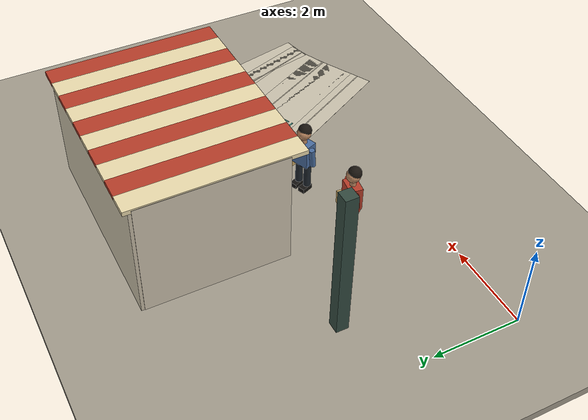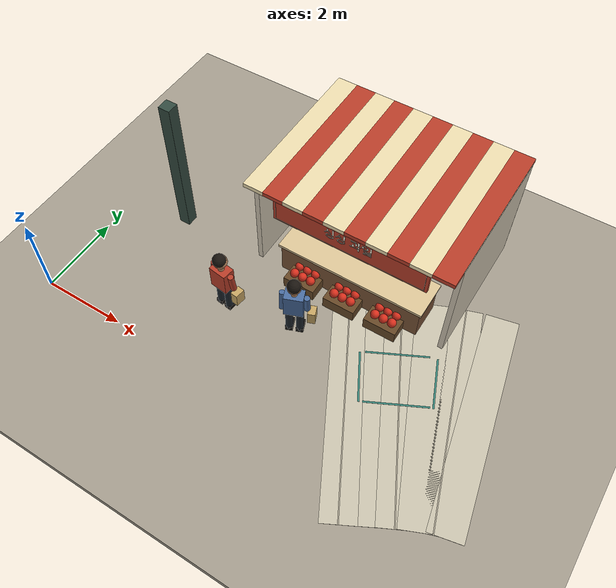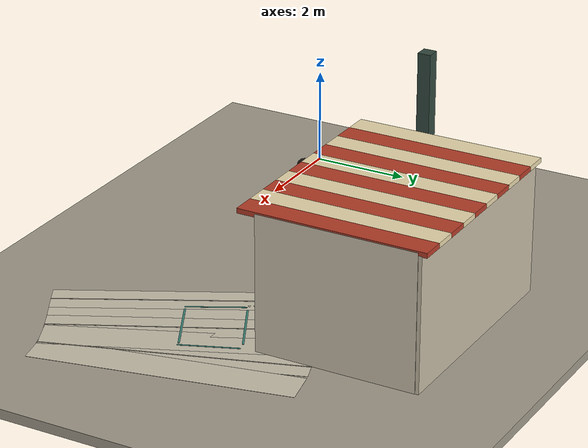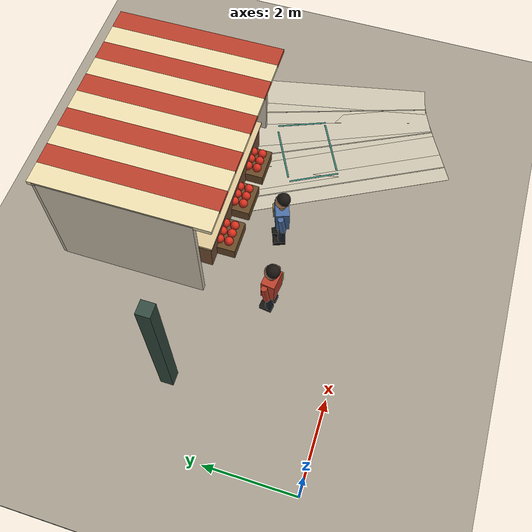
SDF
<sdf version="1.10">
 <world name="swan_town">
  <model name="ground_plane">
   <pose>-14 30 -0.025 0 0 0</pose>
   <static>true</static>
   <link name="link">
    <collision name="collision">
     <geometry><plane><normal>0 0 1</normal><size>100 100</size></plane></geometry>
    </collision>
    <visual name="visual">
     <geometry><plane><normal>0 0 1</normal><size>100 100</size></plane></geometry>
     <material><ambient>0.3 0.5 0.2 1</ambient><diffuse>0.3 0.5 0.2 1</diffuse></material>
    </visual>
   </link>
  </model>
  <model name="ground">
   <static>true</static>
   <pose>15 0 -0.1 0 0 0</pose>
   <link name="body">
    <collision name="box_collision"><geometry><box><size>46 24 0.2</size></box></geometry></collision>
    <visual name="box_visual">
     <geometry><box><size>46 24 0.2</size></box></geometry>
     <material><ambient>0.64 0.61 0.55 1</ambient><diffuse>0.64 0.61 0.55 1</diffuse></material>
    </visual>
   </link>
  </model>
  <model name="market_paving_18">
   <static>true</static>
   <pose>7.25 1.0326 0.002 0 0 0.48375</pose>
   <link name="body">
    <visual name="box_visual">
     <geometry><box><size>0.75 5.2 0.004</size></box></geometry>
     <material><ambient>0.79 0.76 0.68 1</ambient><diffuse>0.79 0.76 0.68 1</diffuse></material>
    </visual>
   </link>
  </model>
  <model name="paving_joint_18">
   <static>true</static>
   <pose>7.25 1.0326 0.0045 0 0 0.48375</pose>
   <link name="body">
    <visual name="box_visual">
     <geometry><box><size>0.025 5.2 0.001</size></box></geometry>
     <material><ambient>0.67 0.64 0.57 1</ambient><diffuse>0.67 0.64 0.57 1</diffuse></material>
    </visual>
   </link>
  </model>
  <model name="market_paving_19">
   <static>true</static>
   <pose>7.75 1.2978 0.002 0 0 0.48699</pose>
   <link name="body">
    <visual name="box_visual">
     <geometry><box><size>0.75 5.2 0.004</size></box></geometry>
     <material><ambient>0.79 0.76 0.68 1</ambient><diffuse>0.79 0.76 0.68 1</diffuse></material>
    </visual>
   </link>
  </model>
  <model name="market_paving_20">
   <static>true</static>
   <pose>8.25 1.5562 0.002 0 0 0.46221</pose>
   <link name="body">
    <visual name="box_visual">
     <geometry><box><size>0.75 5.2 0.004</size></box></geometry>
     <material><ambient>0.79 0.76 0.68 1</ambient><diffuse>0.79 0.76 0.68 1</diffuse></material>
    </visual>
   </link>
  </model>
  <model name="paving_joint_20">
   <static>true</static>
   <pose>8.25 1.5562 0.0045 0 0 0.46221</pose>
   <link name="body">
    <visual name="box_visual">
     <geometry><box><size>0.025 5.2 0.001</size></box></geometry>
     <material><ambient>0.67 0.64 0.57 1</ambient><diffuse>0.67 0.64 0.57 1</diffuse></material>
    </visual>
   </link>
  </model>
  <model name="market_paving_21">
   <static>true</static>
   <pose>8.75 1.7901 0.002 0 0 0.40758</pose>
   <link name="body">
    <visual name="box_visual">
     <geometry><box><size>0.75 5.2 0.004</size></box></geometry>
     <material><ambient>0.79 0.76 0.68 1</ambient><diffuse>0.79 0.76 0.68 1</diffuse></material>
    </visual>
   </link>
  </model>
  <model name="market_paving_22">
   <static>true</static>
   <pose>9.25 1.9827 0.002 0 0 0.32217</pose>
   <link name="body">
    <visual name="box_visual">
     <geometry><box><size>0.75 5.2 0.004</size></box></geometry>
     <material><ambient>0.79 0.76 0.68 1</ambient><diffuse>0.79 0.76 0.68 1</diffuse></material>
    </visual>
   </link>
  </model>
  <model name="paving_joint_22">
   <static>true</static>
   <pose>9.25 1.9827 0.0045 0 0 0.32217</pose>
   <link name="body">
    <visual name="box_visual">
     <geometry><box><size>0.025 5.2 0.001</size></box></geometry>
     <material><ambient>0.67 0.64 0.57 1</ambient><diffuse>0.67 0.64 0.57 1</diffuse></material>
    </visual>
   </link>
  </model>
  <model name="market_paving_23">
   <static>true</static>
   <pose>9.75 2.1197 0.002 0 0 0.2079</pose>
   <link name="body">
    <visual name="box_visual">
     <geometry><box><size>0.75 5.2 0.004</size></box></geometry>
     <material><ambient>0.79 0.76 0.68 1</ambient><diffuse>0.79 0.76 0.68 1</diffuse></material>
    </visual>
   </link>
  </model>
  <model name="entrance_post_1">
   <static>true</static>
   <pose>1.5 3.25 1.8 0 0 0</pose>
   <link name="body">
    <collision name="box_collision"><geometry><box><size>0.28 0.28 3.6</size></box></geometry></collision>
    <visual name="box_visual">
     <geometry><box><size>0.28 0.28 3.6</size></box></geometry>
     <material><ambient>0.2 0.29 0.25 1</ambient><diffuse>0.2 0.29 0.25 1</diffuse></material>
    </visual>
   </link>
  </model>
  <model name="stall_00">
   <static>true</static>
   <pose>6 4.8968 0 0 0 0</pose>
   <link name="body">
    <collision name="rear_collision">
     <pose>0 1.65 1.4 0 0 0</pose>
     <geometry><box><size>4.8 0.15 2.8</size></box></geometry>
    </collision>
    <visual name="rear_visual">
     <pose>0 1.65 1.4 0 0 0</pose>
     <geometry><box><size>4.8 0.15 2.8</size></box></geometry>
     <material><ambient>0.78 0.74 0.65 1</ambient><diffuse>0.78 0.74 0.65 1</diffuse></material>
    </visual>
    <collision name="side_-2.35_collision">
     <pose>-2.35 0 1.4 0 0 0</pose>
     <geometry><box><size>0.12 3.3 2.8</size></box></geometry>
    </collision>
    <visual name="side_-2.35_visual">
     <pose>-2.35 0 1.4 0 0 0</pose>
     <geometry><box><size>0.12 3.3 2.8</size></box></geometry>
     <material><ambient>0.81 0.77 0.69 1</ambient><diffuse>0.81 0.77 0.69 1</diffuse></material>
    </visual>
    <collision name="side_2.35_collision">
     <pose>2.35 0 1.4 0 0 0</pose>
     <geometry><box><size>0.12 3.3 2.8</size></box></geometry>
    </collision>
    <visual name="side_2.35_visual">
     <pose>2.35 0 1.4 0 0 0</pose>
     <geometry><box><size>0.12 3.3 2.8</size></box></geometry>
     <material><ambient>0.81 0.77 0.69 1</ambient><diffuse>0.81 0.77 0.69 1</diffuse></material>
    </visual>
    <collision name="counter_collision">
     <pose>0 -1.22 0.4 0 0 0</pose>
     <geometry><box><size>3.5 0.85 0.8</size></box></geometry>
    </collision>
    <visual name="counter_visual">
     <pose>0 -1.22 0.4 0 0 0</pose>
     <geometry><box><size>3.5 0.85 0.8</size></box></geometry>
     <material><ambient>0.47 0.32 0.21 1</ambient><diffuse>0.47 0.32 0.21 1</diffuse></material>
    </visual>
    <collision name="counter_top_collision">
     <pose>0 -1.22 0.83 0 0 0</pose>
     <geometry><box><size>3.6 0.95 0.06</size></box></geometry>
    </collision>
    <visual name="counter_top_visual">
     <pose>0 -1.22 0.83 0 0 0</pose>
     <geometry><box><size>3.6 0.95 0.06</size></box></geometry>
     <material><ambient>0.86 0.77 0.59 1</ambient><diffuse>0.86 0.77 0.59 1</diffuse></material>
    </visual>
    <collision name="awning_0_collision">
     <pose>-2.16 -0.1 2.78 0 0 0</pose>
     <geometry><box><size>0.48 3.85 0.1</size></box></geometry>
    </collision>
    <visual name="awning_0_visual">
     <pose>-2.16 -0.1 2.78 0 0 0</pose>
     <geometry><box><size>0.48 3.85 0.1</size></box></geometry>
     <material><ambient>0.92 0.86 0.68 1</ambient><diffuse>0.92 0.86 0.68 1</diffuse></material>
    </visual>
    <collision name="awning_1_collision">
     <pose>-1.68 -0.1 2.78 0 0 0</pose>
     <geometry><box><size>0.48 3.85 0.1</size></box></geometry>
    </collision>
    <visual name="awning_1_visual">
     <pose>-1.68 -0.1 2.78 0 0 0</pose>
     <geometry><box><size>0.48 3.85 0.1</size></box></geometry>
     <material><ambient>0.72 0.24 0.16 1</ambient><diffuse>0.72 0.24 0.16 1</diffuse></material>
    </visual>
    <collision name="awning_2_collision">
     <pose>-1.2 -0.1 2.78 0 0 0</pose>
     <geometry><box><size>0.48 3.85 0.1</size></box></geometry>
    </collision>
    <visual name="awning_2_visual">
     <pose>-1.2 -0.1 2.78 0 0 0</pose>
     <geometry><box><size>0.48 3.85 0.1</size></box></geometry>
     <material><ambient>0.92 0.86 0.68 1</ambient><diffuse>0.92 0.86 0.68 1</diffuse></material>
    </visual>
    <collision name="awning_3_collision">
     <pose>-0.72 -0.1 2.78 0 0 0</pose>
     <geometry><box><size>0.48 3.85 0.1</size></box></geometry>
    </collision>
    <visual name="awning_3_visual">
     <pose>-0.72 -0.1 2.78 0 0 0</pose>
     <geometry><box><size>0.48 3.85 0.1</size></box></geometry>
     <material><ambient>0.72 0.24 0.16 1</ambient><diffuse>0.72 0.24 0.16 1</diffuse></material>
    </visual>
    <collision name="awning_4_collision">
     <pose>-0.24 -0.1 2.78 0 0 0</pose>
     <geometry><box><size>0.48 3.85 0.1</size></box></geometry>
    </collision>
    <visual name="awning_4_visual">
     <pose>-0.24 -0.1 2.78 0 0 0</pose>
     <geometry><box><size>0.48 3.85 0.1</size></box></geometry>
     <material><ambient>0.92 0.86 0.68 1</ambient><diffuse>0.92 0.86 0.68 1</diffuse></material>
    </visual>
    <collision name="awning_5_collision">
     <pose>0.24 -0.1 2.78 0 0 0</pose>
     <geometry><box><size>0.48 3.85 0.1</size></box></geometry>
    </collision>
    <visual name="awning_5_visual">
     <pose>0.24 -0.1 2.78 0 0 0</pose>
     <geometry><box><size>0.48 3.85 0.1</size></box></geometry>
     <material><ambient>0.72 0.24 0.16 1</ambient><diffuse>0.72 0.24 0.16 1</diffuse></material>
    </visual>
    <collision name="awning_6_collision">
     <pose>0.72 -0.1 2.78 0 0 0</pose>
     <geometry><box><size>0.48 3.85 0.1</size></box></geometry>
    </collision>
    <visual name="awning_6_visual">
     <pose>0.72 -0.1 2.78 0 0 0</pose>
     <geometry><box><size>0.48 3.85 0.1</size></box></geometry>
     <material><ambient>0.92 0.86 0.68 1</ambient><diffuse>0.92 0.86 0.68 1</diffuse></material>
    </visual>
    <collision name="awning_7_collision">
     <pose>1.2 -0.1 2.78 0 0 0</pose>
     <geometry><box><size>0.48 3.85 0.1</size></box></geometry>
    </collision>
    <visual name="awning_7_visual">
     <pose>1.2 -0.1 2.78 0 0 0</pose>
     <geometry><box><size>0.48 3.85 0.1</size></box></geometry>
     <material><ambient>0.72 0.24 0.16 1</ambient><diffuse>0.72 0.24 0.16 1</diffuse></material>
    </visual>
    <collision name="awning_8_collision">
     <pose>1.68 -0.1 2.78 0 0 0</pose>
     <geometry><box><size>0.48 3.85 0.1</size></box></geometry>
    </collision>
    <visual name="awning_8_visual">
     <pose>1.68 -0.1 2.78 0 0 0</pose>
     <geometry><box><size>0.48 3.85 0.1</size></box></geometry>
     <material><ambient>0.92 0.86 0.68 1</ambient><diffuse>0.92 0.86 0.68 1</diffuse></material>
    </visual>
    <collision name="awning_9_collision">
     <pose>2.16 -0.1 2.78 0 0 0</pose>
     <geometry><box><size>0.48 3.85 0.1</size></box></geometry>
    </collision>
    <visual name="awning_9_visual">
     <pose>2.16 -0.1 2.78 0 0 0</pose>
     <geometry><box><size>0.48 3.85 0.1</size></box></geometry>
     <material><ambient>0.72 0.24 0.16 1</ambient><diffuse>0.72 0.24 0.16 1</diffuse></material>
    </visual>
    <collision name="crate_-1_collision">
     <pose>-1.04 -1.77 0.15 0 0 0</pose>
     <geometry><box><size>0.78 0.6 0.3</size></box></geometry>
    </collision>
    <visual name="crate_-1_visual">
     <pose>-1.04 -1.77 0.15 0 0 0</pose>
     <geometry><box><size>0.78 0.6 0.3</size></box></geometry>
     <material><ambient>0.4 0.28 0.15 1</ambient><diffuse>0.4 0.28 0.15 1</diffuse></material>
    </visual>
    <visual name="produce_-1_0_visual">
     <pose>-1.25 -1.88 0.39 0 0 0</pose>
     <geometry><sphere><radius>0.105</radius></sphere></geometry>
     <material><ambient>0.84 0.18 0.11 1</ambient><diffuse>0.84 0.18 0.11 1</diffuse></material>
    </visual>
    <visual name="produce_-1_1_visual">
     <pose>-1.04 -1.88 0.39 0 0 0</pose>
     <geometry><sphere><radius>0.105</radius></sphere></geometry>
     <material><ambient>0.84 0.18 0.11 1</ambient><diffuse>0.84 0.18 0.11 1</diffuse></material>
    </visual>
    <visual name="produce_-1_2_visual">
     <pose>-0.83 -1.88 0.39 0 0 0</pose>
     <geometry><sphere><radius>0.105</radius></sphere></geometry>
     <material><ambient>0.84 0.18 0.11 1</ambient><diffuse>0.84 0.18 0.11 1</diffuse></material>
    </visual>
    <visual name="produce_-1_3_visual">
     <pose>-1.25 -1.66 0.39 0 0 0</pose>
     <geometry><sphere><radius>0.105</radius></sphere></geometry>
     <material><ambient>0.84 0.18 0.11 1</ambient><diffuse>0.84 0.18 0.11 1</diffuse></material>
    </visual>
    <visual name="produce_-1_4_visual">
     <pose>-1.04 -1.66 0.39 0 0 0</pose>
     <geometry><sphere><radius>0.105</radius></sphere></geometry>
     <material><ambient>0.84 0.18 0.11 1</ambient><diffuse>0.84 0.18 0.11 1</diffuse></material>
    </visual>
    <visual name="produce_-1_5_visual">
     <pose>-0.83 -1.66 0.39 0 0 0</pose>
     <geometry><sphere><radius>0.105</radius></sphere></geometry>
     <material><ambient>0.84 0.18 0.11 1</ambient><diffuse>0.84 0.18 0.11 1</diffuse></material>
    </visual>
    <collision name="crate_0_collision">
     <pose>0 -1.77 0.15 0 0 0</pose>
     <geometry><box><size>0.78 0.6 0.3</size></box></geometry>
    </collision>
    <visual name="crate_0_visual">
     <pose>0 -1.77 0.15 0 0 0</pose>
     <geometry><box><size>0.78 0.6 0.3</size></box></geometry>
     <material><ambient>0.4 0.28 0.15 1</ambient><diffuse>0.4 0.28 0.15 1</diffuse></material>
    </visual>
    <visual name="produce_0_0_visual">
     <pose>-0.21 -1.88 0.39 0 0 0</pose>
     <geometry><sphere><radius>0.105</radius></sphere></geometry>
     <material><ambient>0.84 0.18 0.11 1</ambient><diffuse>0.84 0.18 0.11 1</diffuse></material>
    </visual>
    <visual name="produce_0_1_visual">
     <pose>0 -1.88 0.39 0 0 0</pose>
     <geometry><sphere><radius>0.105</radius></sphere></geometry>
     <material><ambient>0.84 0.18 0.11 1</ambient><diffuse>0.84 0.18 0.11 1</diffuse></material>
    </visual>
    <visual name="produce_0_2_visual">
     <pose>0.21 -1.88 0.39 0 0 0</pose>
     <geometry><sphere><radius>0.105</radius></sphere></geometry>
     <material><ambient>0.84 0.18 0.11 1</ambient><diffuse>0.84 0.18 0.11 1</diffuse></material>
    </visual>
    <visual name="produce_0_3_visual">
     <pose>-0.21 -1.66 0.39 0 0 0</pose>
     <geometry><sphere><radius>0.105</radius></sphere></geometry>
     <material><ambient>0.84 0.18 0.11 1</ambient><diffuse>0.84 0.18 0.11 1</diffuse></material>
    </visual>
    <visual name="produce_0_4_visual">
     <pose>0 -1.66 0.39 0 0 0</pose>
     <geometry><sphere><radius>0.105</radius></sphere></geometry>
     <material><ambient>0.84 0.18 0.11 1</ambient><diffuse>0.84 0.18 0.11 1</diffuse></material>
    </visual>
    <visual name="produce_0_5_visual">
     <pose>0.21 -1.66 0.39 0 0 0</pose>
     <geometry><sphere><radius>0.105</radius></sphere></geometry>
     <material><ambient>0.84 0.18 0.11 1</ambient><diffuse>0.84 0.18 0.11 1</diffuse></material>
    </visual>
    <collision name="crate_1_collision">
     <pose>1.04 -1.77 0.15 0 0 0</pose>
     <geometry><box><size>0.78 0.6 0.3</size></box></geometry>
    </collision>
    <visual name="crate_1_visual">
     <pose>1.04 -1.77 0.15 0 0 0</pose>
     <geometry><box><size>0.78 0.6 0.3</size></box></geometry>
     <material><ambient>0.4 0.28 0.15 1</ambient><diffuse>0.4 0.28 0.15 1</diffuse></material>
    </visual>
    <visual name="produce_1_0_visual">
     <pose>0.83 -1.88 0.39 0 0 0</pose>
     <geometry><sphere><radius>0.105</radius></sphere></geometry>
     <material><ambient>0.84 0.18 0.11 1</ambient><diffuse>0.84 0.18 0.11 1</diffuse></material>
    </visual>
    <visual name="produce_1_1_visual">
     <pose>1.04 -1.88 0.39 0 0 0</pose>
     <geometry><sphere><radius>0.105</radius></sphere></geometry>
     <material><ambient>0.84 0.18 0.11 1</ambient><diffuse>0.84 0.18 0.11 1</diffuse></material>
    </visual>
    <visual name="produce_1_2_visual">
     <pose>1.25 -1.88 0.39 0 0 0</pose>
     <geometry><sphere><radius>0.105</radius></sphere></geometry>
     <material><ambient>0.84 0.18 0.11 1</ambient><diffuse>0.84 0.18 0.11 1</diffuse></material>
    </visual>
    <visual name="produce_1_3_visual">
     <pose>0.83 -1.66 0.39 0 0 0</pose>
     <geometry><sphere><radius>0.105</radius></sphere></geometry>
     <material><ambient>0.84 0.18 0.11 1</ambient><diffuse>0.84 0.18 0.11 1</diffuse></material>
    </visual>
    <visual name="produce_1_4_visual">
     <pose>1.04 -1.66 0.39 0 0 0</pose>
     <geometry><sphere><radius>0.105</radius></sphere></geometry>
     <material><ambient>0.84 0.18 0.11 1</ambient><diffuse>0.84 0.18 0.11 1</diffuse></material>
    </visual>
    <visual name="produce_1_5_visual">
     <pose>1.25 -1.66 0.39 0 0 0</pose>
     <geometry><sphere><radius>0.105</radius></sphere></geometry>
     <material><ambient>0.84 0.18 0.11 1</ambient><diffuse>0.84 0.18 0.11 1</diffuse></material>
    </visual>
   </link>
  </model>
  <model name="signboard_0">
   <static>true</static>
   <pose>6 3.1368 2.24 0 0 0</pose>
   <link name="body">
    <collision name="box_collision"><geometry><box><size>3.65 0.08 0.72</size></box></geometry></collision>
    <visual name="box_visual">
     <geometry><box><size>3.65 0.08 0.72</size></box></geometry>
     <material><ambient>0.72 0.24 0.16 1</ambient><diffuse>0.72 0.24 0.16 1</diffuse></material>
    </visual>
   </link>
  </model>
  <model name="sign_shop_0">
   <static>true</static>
   <pose>6 3.0888 2.24 0 0 0</pose>
   <link name="body">
    <visual name="top_visual">
     <pose>0 -0.003 0.32062 0 0 0</pose>
     <geometry><box><size>3.5136 0.003 0.0108</size></box></geometry>
     <material><ambient>1 0.961 0.875 1</ambient><diffuse>1 0.961 0.875 1</diffuse></material>
    </visual>
    <visual name="bottom_visual">
     <pose>0 -0.003 -0.32062 0 0 0</pose>
     <geometry><box><size>3.5136 0.003 0.0108</size></box></geometry>
     <material><ambient>1 0.961 0.875 1</ambient><diffuse>1 0.961 0.875 1</diffuse></material>
    </visual>
    <visual name="left_visual">
     <pose>-1.7568 -0.003 0 0 0 0</pose>
     <geometry><box><size>0.0108 0.003 0.64125</size></box></geometry>
     <material><ambient>1 0.961 0.875 1</ambient><diffuse>1 0.961 0.875 1</diffuse></material>
    </visual>
    <visual name="right_visual">
     <pose>1.7568 -0.003 0 0 0 0</pose>
     <geometry><box><size>0.0108 0.003 0.64125</size></box></geometry>
     <material><ambient>1 0.961 0.875 1</ambient><diffuse>1 0.961 0.875 1</diffuse></material>
    </visual>
    <visual name="ink_0_visual">
     <pose>-0.084375 -0.003 0.15938 0 0 0</pose>
     <geometry><box><size>0.01875 0.003 0.01875</size></box></geometry>
     <material><ambient>1 0.961 0.875 1</ambient><diffuse>1 0.961 0.875 1</diffuse></material>
    </visual>
    <visual name="ink_1_visual">
     <pose>0.39375 -0.003 0.15938 0 0 0</pose>
     <geometry><box><size>0.0375 0.003 0.01875</size></box></geometry>
     <material><ambient>1 0.961 0.875 1</ambient><diffuse>1 0.961 0.875 1</diffuse></material>
    </visual>
    <visual name="ink_2_visual">
     <pose>0.12187 -0.003 0.14062 0 0 0</pose>
     <geometry><box><size>0.13125 0.003 0.01875</size></box></geometry>
     <material><ambient>1 0.961 0.875 1</ambient><diffuse>1 0.961 0.875 1</diffuse></material>
    </visual>
    <visual name="ink_3_visual">
     <pose>0.39375 -0.003 0.14062 0 0 0</pose>
     <geometry><box><size>0.1125 0.003 0.01875</size></box></geometry>
     <material><ambient>1 0.961 0.875 1</ambient><diffuse>1 0.961 0.875 1</diffuse></material>
    </visual>
    <visual name="ink_4_visual">
     <pose>0.13125 -0.003 0.12188 0 0 0</pose>
     <geometry><box><size>0.15 0.003 0.01875</size></box></geometry>
     <material><ambient>1 0.961 0.875 1</ambient><diffuse>1 0.961 0.875 1</diffuse></material>
    </visual>
    <visual name="ink_5_visual">
     <pose>-0.4875 -0.003 0.12188 0 0 0</pose>
     <geometry><box><size>0.0375 0.003 0.05625</size></box></geometry>
     <material><ambient>1 0.961 0.875 1</ambient><diffuse>1 0.961 0.875 1</diffuse></material>
    </visual>
    <visual name="ink_6_visual">
     <pose>-0.21562 -0.003 0.12188 0 0 0</pose>
     <geometry><box><size>0.01875 0.003 0.05625</size></box></geometry>
     <material><ambient>1 0.961 0.875 1</ambient><diffuse>1 0.961 0.875 1</diffuse></material>
    </visual>
    <visual name="ink_7_visual">
     <pose>-0.47813 -0.003 0.084375 0 0 0</pose>
     <geometry><box><size>0.05625 0.003 0.01875</size></box></geometry>
     <material><ambient>1 0.961 0.875 1</ambient><diffuse>1 0.961 0.875 1</diffuse></material>
    </visual>
    <visual name="ink_8_visual">
     <pose>-0.21562 -0.003 0.084375 0 0 0</pose>
     <geometry><box><size>0.05625 0.003 0.01875</size></box></geometry>
     <material><ambient>1 0.961 0.875 1</ambient><diffuse>1 0.961 0.875 1</diffuse></material>
    </visual>
    <visual name="ink_9_visual">
     <pose>0.3375 -0.003 0.10313 0 0 0</pose>
     <geometry><box><size>0.0375 0.003 0.05625</size></box></geometry>
     <material><ambient>1 0.961 0.875 1</ambient><diffuse>1 0.961 0.875 1</diffuse></material>
    </visual>
    <visual name="ink_10_visual">
     <pose>0.45 -0.003 0.10313 0 0 0</pose>
     <geometry><box><size>0.0375 0.003 0.05625</size></box></geometry>
     <material><ambient>1 0.961 0.875 1</ambient><diffuse>1 0.961 0.875 1</diffuse></material>
    </visual>
    <visual name="ink_11_visual">
     <pose>-0.50625 -0.003 0.065625 0 0 0</pose>
     <geometry><box><size>0.0375 0.003 0.01875</size></box></geometry>
     <material><ambient>1 0.961 0.875 1</ambient><diffuse>1 0.961 0.875 1</diffuse></material>
    </visual>
    <visual name="ink_12_visual">
     <pose>-0.45 -0.003 0.065625 0 0 0</pose>
     <geometry><box><size>0.0375 0.003 0.01875</size></box></geometry>
     <material><ambient>1 0.961 0.875 1</ambient><diffuse>1 0.961 0.875 1</diffuse></material>
    </visual>
    <visual name="ink_13_visual">
     <pose>-0.24375 -0.003 0.065625 0 0 0</pose>
     <geometry><box><size>0.0375 0.003 0.01875</size></box></geometry>
     <material><ambient>1 0.961 0.875 1</ambient><diffuse>1 0.961 0.875 1</diffuse></material>
    </visual>
    <visual name="ink_14_visual">
     <pose>-0.1875 -0.003 0.065625 0 0 0</pose>
     <geometry><box><size>0.0375 0.003 0.01875</size></box></geometry>
     <material><ambient>1 0.961 0.875 1</ambient><diffuse>1 0.961 0.875 1</diffuse></material>
    </visual>
    <visual name="ink_15_visual">
     <pose>0.24375 -0.003 0.1125 0 0 0</pose>
     <geometry><box><size>0.0375 0.003 0.1125</size></box></geometry>
     <material><ambient>1 0.961 0.875 1</ambient><diffuse>1 0.961 0.875 1</diffuse></material>
    </visual>
    <visual name="ink_16_visual">
     <pose>0.35625 -0.003 0.065625 0 0 0</pose>
     <geometry><box><size>0.0375 0.003 0.01875</size></box></geometry>
     <material><ambient>1 0.961 0.875 1</ambient><diffuse>1 0.961 0.875 1</diffuse></material>
    </visual>
    <visual name="ink_17_visual">
     <pose>0.43125 -0.003 0.065625 0 0 0</pose>
     <geometry><box><size>0.0375 0.003 0.01875</size></box></geometry>
     <material><ambient>1 0.961 0.875 1</ambient><diffuse>1 0.961 0.875 1</diffuse></material>
    </visual>
    <visual name="ink_18_visual">
     <pose>-0.525 -0.003 0.046875 0 0 0</pose>
     <geometry><box><size>0.0375 0.003 0.01875</size></box></geometry>
     <material><ambient>1 0.961 0.875 1</ambient><diffuse>1 0.961 0.875 1</diffuse></material>
    </visual>
    <visual name="ink_19_visual">
     <pose>-0.43125 -0.003 0.046875 0 0 0</pose>
     <geometry><box><size>0.0375 0.003 0.01875</size></box></geometry>
     <material><ambient>1 0.961 0.875 1</ambient><diffuse>1 0.961 0.875 1</diffuse></material>
    </visual>
    <visual name="ink_20_visual">
     <pose>-0.2625 -0.003 0.046875 0 0 0</pose>
     <geometry><box><size>0.0375 0.003 0.01875</size></box></geometry>
     <material><ambient>1 0.961 0.875 1</ambient><diffuse>1 0.961 0.875 1</diffuse></material>
    </visual>
    <visual name="ink_21_visual">
     <pose>-0.16875 -0.003 0.046875 0 0 0</pose>
     <geometry><box><size>0.0375 0.003 0.01875</size></box></geometry>
     <material><ambient>1 0.961 0.875 1</ambient><diffuse>1 0.961 0.875 1</diffuse></material>
    </visual>
    <visual name="ink_22_visual">
     <pose>0.1875 -0.003 0.075 0 0 0</pose>
     <geometry><box><size>0.0375 0.003 0.075</size></box></geometry>
     <material><ambient>1 0.961 0.875 1</ambient><diffuse>1 0.961 0.875 1</diffuse></material>
    </visual>
    <visual name="ink_23_visual">
     <pose>0.2625 -0.003 0.046875 0 0 0</pose>
     <geometry><box><size>0.075 0.003 0.01875</size></box></geometry>
     <material><ambient>1 0.961 0.875 1</ambient><diffuse>1 0.961 0.875 1</diffuse></material>
    </visual>
    <visual name="ink_24_visual">
     <pose>0.39375 -0.003 0.046875 0 0 0</pose>
     <geometry><box><size>0.075 0.003 0.01875</size></box></geometry>
     <material><ambient>1 0.961 0.875 1</ambient><diffuse>1 0.961 0.875 1</diffuse></material>
    </visual>
    <visual name="ink_25_visual">
     <pose>0.525 -0.003 0.10313 0 0 0</pose>
     <geometry><box><size>0.0375 0.003 0.13125</size></box></geometry>
     <material><ambient>1 0.961 0.875 1</ambient><diffuse>1 0.961 0.875 1</diffuse></material>
    </visual>
    <visual name="ink_26_visual">
     <pose>-0.54375 -0.003 0.028125 0 0 0</pose>
     <geometry><box><size>0.0375 0.003 0.01875</size></box></geometry>
     <material><ambient>1 0.961 0.875 1</ambient><diffuse>1 0.961 0.875 1</diffuse></material>
    </visual>
    <visual name="ink_27_visual">
     <pose>-0.42188 -0.003 0.028125 0 0 0</pose>
     <geometry><box><size>0.01875 0.003 0.01875</size></box></geometry>
     <material><ambient>1 0.961 0.875 1</ambient><diffuse>1 0.961 0.875 1</diffuse></material>
    </visual>
    <visual name="ink_28_visual">
     <pose>-0.28125 -0.003 0.028125 0 0 0</pose>
     <geometry><box><size>0.0375 0.003 0.01875</size></box></geometry>
     <material><ambient>1 0.961 0.875 1</ambient><diffuse>1 0.961 0.875 1</diffuse></material>
    </visual>
    <visual name="ink_29_visual">
     <pose>-0.15937 -0.003 0.028125 0 0 0</pose>
     <geometry><box><size>0.01875 0.003 0.01875</size></box></geometry>
     <material><ambient>1 0.961 0.875 1</ambient><diffuse>1 0.961 0.875 1</diffuse></material>
    </visual>
    <visual name="ink_30_visual">
     <pose>-0.09375 -0.003 0.084375 0 0 0</pose>
     <geometry><box><size>0.0375 0.003 0.13125</size></box></geometry>
     <material><ambient>1 0.961 0.875 1</ambient><diffuse>1 0.961 0.875 1</diffuse></material>
    </visual>
    <visual name="ink_31_visual">
     <pose>0.17812 -0.003 0.028125 0 0 0</pose>
     <geometry><box><size>0.01875 0.003 0.01875</size></box></geometry>
     <material><ambient>1 0.961 0.875 1</ambient><diffuse>1 0.961 0.875 1</diffuse></material>
    </visual>
    <visual name="ink_32_visual">
     <pose>-0.35625 -0.003 0.084375 0 0 0</pose>
     <geometry><box><size>0.0375 0.003 0.16875</size></box></geometry>
     <material><ambient>1 0.961 0.875 1</ambient><diffuse>1 0.961 0.875 1</diffuse></material>
    </visual>
    <visual name="ink_33_visual">
     <pose>-0.084375 -0.003 0.009375 0 0 0</pose>
     <geometry><box><size>0.01875 0.003 0.01875</size></box></geometry>
     <material><ambient>1 0.961 0.875 1</ambient><diffuse>1 0.961 0.875 1</diffuse></material>
    </visual>
    <visual name="ink_34_visual">
     <pose>0.45 -0.003 0.009375 0 0 0</pose>
     <geometry><box><size>0.1875 0.003 0.01875</size></box></geometry>
     <material><ambient>1 0.961 0.875 1</ambient><diffuse>1 0.961 0.875 1</diffuse></material>
    </visual>
    <visual name="ink_35_visual">
     <pose>-0.44062 -0.003 -0.009375 0 0 0</pose>
     <geometry><box><size>0.13125 0.003 0.01875</size></box></geometry>
     <material><ambient>1 0.961 0.875 1</ambient><diffuse>1 0.961 0.875 1</diffuse></material>
    </visual>
    <visual name="ink_36_visual">
     <pose>-0.16875 -0.003 -0.009375 0 0 0</pose>
     <geometry><box><size>0.1125 0.003 0.01875</size></box></geometry>
     <material><ambient>1 0.961 0.875 1</ambient><diffuse>1 0.961 0.875 1</diffuse></material>
    </visual>
    <visual name="ink_37_visual">
     <pose>0.1125 -0.003 0.01875 0 0 0</pose>
     <geometry><box><size>0.0375 0.003 0.075</size></box></geometry>
     <material><ambient>1 0.961 0.875 1</ambient><diffuse>1 0.961 0.875 1</diffuse></material>
    </visual>
    <visual name="ink_38_visual">
     <pose>0.24375 -0.003 0.009375 0 0 0</pose>
     <geometry><box><size>0.0375 0.003 0.05625</size></box></geometry>
     <material><ambient>1 0.961 0.875 1</ambient><diffuse>1 0.961 0.875 1</diffuse></material>
    </visual>
    <visual name="ink_39_visual">
     <pose>0.525 -0.003 -0.009375 0 0 0</pose>
     <geometry><box><size>0.0375 0.003 0.01875</size></box></geometry>
     <material><ambient>1 0.961 0.875 1</ambient><diffuse>1 0.961 0.875 1</diffuse></material>
    </visual>
    <visual name="ink_40_visual">
     <pose>-0.49687 -0.003 -0.028125 0 0 0</pose>
     <geometry><box><size>0.05625 0.003 0.01875</size></box></geometry>
     <material><ambient>1 0.961 0.875 1</ambient><diffuse>1 0.961 0.875 1</diffuse></material>
    </visual>
    <visual name="ink_41_visual">
     <pose>-0.375 -0.003 -0.028125 0 0 0</pose>
     <geometry><box><size>0.0375 0.003 0.01875</size></box></geometry>
     <material><ambient>1 0.961 0.875 1</ambient><diffuse>1 0.961 0.875 1</diffuse></material>
    </visual>
    <visual name="ink_42_visual">
     <pose>-0.225 -0.003 -0.028125 0 0 0</pose>
     <geometry><box><size>0.0375 0.003 0.01875</size></box></geometry>
     <material><ambient>1 0.961 0.875 1</ambient><diffuse>1 0.961 0.875 1</diffuse></material>
    </visual>
    <visual name="ink_43_visual">
     <pose>-0.10312 -0.003 -0.028125 0 0 0</pose>
     <geometry><box><size>0.05625 0.003 0.01875</size></box></geometry>
     <material><ambient>1 0.961 0.875 1</ambient><diffuse>1 0.961 0.875 1</diffuse></material>
    </visual>
    <visual name="ink_44_visual">
     <pose>0.15 -0.003 -0.028125 0 0 0</pose>
     <geometry><box><size>0.225 0.003 0.01875</size></box></geometry>
     <material><ambient>1 0.961 0.875 1</ambient><diffuse>1 0.961 0.875 1</diffuse></material>
    </visual>
    <visual name="ink_45_visual">
     <pose>0.46875 -0.003 -0.028125 0 0 0</pose>
     <geometry><box><size>0.15 0.003 0.01875</size></box></geometry>
     <material><ambient>1 0.961 0.875 1</ambient><diffuse>1 0.961 0.875 1</diffuse></material>
    </visual>
    <visual name="ink_46_visual">
     <pose>-0.51563 -0.003 -0.046875 0 0 0</pose>
     <geometry><box><size>0.01875 0.003 0.01875</size></box></geometry>
     <material><ambient>1 0.961 0.875 1</ambient><diffuse>1 0.961 0.875 1</diffuse></material>
    </visual>
    <visual name="ink_47_visual">
     <pose>-0.084375 -0.003 -0.046875 0 0 0</pose>
     <geometry><box><size>0.01875 0.003 0.01875</size></box></geometry>
     <material><ambient>1 0.961 0.875 1</ambient><diffuse>1 0.961 0.875 1</diffuse></material>
    </visual>
    <visual name="ink_48_visual">
     <pose>0.065625 -0.003 -0.046875 0 0 0</pose>
     <geometry><box><size>0.01875 0.003 0.01875</size></box></geometry>
     <material><ambient>1 0.961 0.875 1</ambient><diffuse>1 0.961 0.875 1</diffuse></material>
    </visual>
    <visual name="ink_49_visual">
     <pose>0.45 -0.003 -0.046875 0 0 0</pose>
     <geometry><box><size>0.1875 0.003 0.01875</size></box></geometry>
     <material><ambient>1 0.961 0.875 1</ambient><diffuse>1 0.961 0.875 1</diffuse></material>
    </visual>
    <visual name="ink_50_visual">
     <pose>-0.50625 -0.003 -0.065625 0 0 0</pose>
     <geometry><box><size>0.0375 0.003 0.01875</size></box></geometry>
     <material><ambient>1 0.961 0.875 1</ambient><diffuse>1 0.961 0.875 1</diffuse></material>
    </visual>
    <visual name="ink_51_visual">
     <pose>-0.35625 -0.003 -0.05625 0 0 0</pose>
     <geometry><box><size>0.0375 0.003 0.0375</size></box></geometry>
     <material><ambient>1 0.961 0.875 1</ambient><diffuse>1 0.961 0.875 1</diffuse></material>
    </visual>
    <visual name="ink_52_visual">
     <pose>-0.24375 -0.003 -0.05625 0 0 0</pose>
     <geometry><box><size>0.0375 0.003 0.0375</size></box></geometry>
     <material><ambient>1 0.961 0.875 1</ambient><diffuse>1 0.961 0.875 1</diffuse></material>
    </visual>
    <visual name="ink_53_visual">
     <pose>-0.09375 -0.003 -0.065625 0 0 0</pose>
     <geometry><box><size>0.0375 0.003 0.01875</size></box></geometry>
     <material><ambient>1 0.961 0.875 1</ambient><diffuse>1 0.961 0.875 1</diffuse></material>
    </visual>
    <visual name="ink_54_visual">
     <pose>0.375 -0.003 -0.065625 0 0 0</pose>
     <geometry><box><size>0.0375 0.003 0.01875</size></box></geometry>
     <material><ambient>1 0.961 0.875 1</ambient><diffuse>1 0.961 0.875 1</diffuse></material>
    </visual>
    <visual name="ink_55_visual">
     <pose>-0.43125 -0.003 -0.084375 0 0 0</pose>
     <geometry><box><size>0.15 0.003 0.01875</size></box></geometry>
     <material><ambient>1 0.961 0.875 1</ambient><diffuse>1 0.961 0.875 1</diffuse></material>
    </visual>
    <visual name="ink_56_visual">
     <pose>-0.16875 -0.003 -0.084375 0 0 0</pose>
     <geometry><box><size>0.15 0.003 0.01875</size></box></geometry>
     <material><ambient>1 0.961 0.875 1</ambient><diffuse>1 0.961 0.875 1</diffuse></material>
    </visual>
    <visual name="ink_57_visual">
     <pose>0.24375 -0.003 -0.065625 0 0 0</pose>
     <geometry><box><size>0.0375 0.003 0.05625</size></box></geometry>
     <material><ambient>1 0.961 0.875 1</ambient><diffuse>1 0.961 0.875 1</diffuse></material>
    </visual>
    <visual name="ink_58_visual">
     <pose>0.45 -0.003 -0.084375 0 0 0</pose>
     <geometry><box><size>0.1875 0.003 0.01875</size></box></geometry>
     <material><ambient>1 0.961 0.875 1</ambient><diffuse>1 0.961 0.875 1</diffuse></material>
    </visual>
    <visual name="ink_59_visual">
     <pose>-0.43125 -0.003 -0.10313 0 0 0</pose>
     <geometry><box><size>0.075 0.003 0.01875</size></box></geometry>
     <material><ambient>1 0.961 0.875 1</ambient><diffuse>1 0.961 0.875 1</diffuse></material>
    </visual>
    <visual name="ink_60_visual">
     <pose>-0.16875 -0.003 -0.10313 0 0 0</pose>
     <geometry><box><size>0.075 0.003 0.01875</size></box></geometry>
     <material><ambient>1 0.961 0.875 1</ambient><diffuse>1 0.961 0.875 1</diffuse></material>
    </visual>
    <visual name="ink_61_visual">
     <pose>0.25312 -0.003 -0.10313 0 0 0</pose>
     <geometry><box><size>0.01875 0.003 0.01875</size></box></geometry>
     <material><ambient>1 0.961 0.875 1</ambient><diffuse>1 0.961 0.875 1</diffuse></material>
    </visual>
   </link>
  </model>
  <model name="shopper_fruit">
   <static>true</static>
   <pose>5.4053 1.9859 0 0 0 1.9395</pose>
   <link name="body">
    <collision name="leg_-1_collision">
     <pose>0 -0.12 0.4 0 0 0</pose>
     <geometry><cylinder><radius>0.085</radius><length>0.68</length></cylinder></geometry>
    </collision>
    <visual name="leg_-1_visual">
     <pose>0 -0.12 0.4 0 0 0</pose>
     <geometry><cylinder><radius>0.085</radius><length>0.68</length></cylinder></geometry>
     <material><ambient>0.12 0.15 0.18 1</ambient><diffuse>0.12 0.15 0.18 1</diffuse></material>
    </visual>
    <collision name="shoe_-1_collision">
     <pose>0.06 -0.12 0.055 0 0 0</pose>
     <geometry><box><size>0.28 0.17 0.11</size></box></geometry>
    </collision>
    <visual name="shoe_-1_visual">
     <pose>0.06 -0.12 0.055 0 0 0</pose>
     <geometry><box><size>0.28 0.17 0.11</size></box></geometry>
     <material><ambient>0.08 0.07 0.06 1</ambient><diffuse>0.08 0.07 0.06 1</diffuse></material>
    </visual>
    <collision name="arm_-1_collision">
     <pose>0.02 -0.27 1.02 0 -0.12 0</pose>
     <geometry><cylinder><radius>0.068</radius><length>0.48</length></cylinder></geometry>
    </collision>
    <visual name="arm_-1_visual">
     <pose>0.02 -0.27 1.02 0 -0.12 0</pose>
     <geometry><cylinder><radius>0.068</radius><length>0.48</length></cylinder></geometry>
     <material><ambient>0.29 0.43 0.63 1</ambient><diffuse>0.29 0.43 0.63 1</diffuse></material>
    </visual>
    <collision name="leg_1_collision">
     <pose>0 0.12 0.4 0 0 0</pose>
     <geometry><cylinder><radius>0.085</radius><length>0.68</length></cylinder></geometry>
    </collision>
    <visual name="leg_1_visual">
     <pose>0 0.12 0.4 0 0 0</pose>
     <geometry><cylinder><radius>0.085</radius><length>0.68</length></cylinder></geometry>
     <material><ambient>0.12 0.15 0.18 1</ambient><diffuse>0.12 0.15 0.18 1</diffuse></material>
    </visual>
    <collision name="shoe_1_collision">
     <pose>0.06 0.12 0.055 0 0 0</pose>
     <geometry><box><size>0.28 0.17 0.11</size></box></geometry>
    </collision>
    <visual name="shoe_1_visual">
     <pose>0.06 0.12 0.055 0 0 0</pose>
     <geometry><box><size>0.28 0.17 0.11</size></box></geometry>
     <material><ambient>0.08 0.07 0.06 1</ambient><diffuse>0.08 0.07 0.06 1</diffuse></material>
    </visual>
    <collision name="arm_1_collision">
     <pose>0.02 0.27 1.02 0 0.12 0</pose>
     <geometry><cylinder><radius>0.068</radius><length>0.48</length></cylinder></geometry>
    </collision>
    <visual name="arm_1_visual">
     <pose>0.02 0.27 1.02 0 0.12 0</pose>
     <geometry><cylinder><radius>0.068</radius><length>0.48</length></cylinder></geometry>
     <material><ambient>0.29 0.43 0.63 1</ambient><diffuse>0.29 0.43 0.63 1</diffuse></material>
    </visual>
    <collision name="torso_collision">
     <pose>0 0 1.02 0 0 0</pose>
     <geometry><box><size>0.3 0.43 0.58</size></box></geometry>
    </collision>
    <visual name="torso_visual">
     <pose>0 0 1.02 0 0 0</pose>
     <geometry><box><size>0.3 0.43 0.58</size></box></geometry>
     <material><ambient>0.29 0.43 0.63 1</ambient><diffuse>0.29 0.43 0.63 1</diffuse></material>
    </visual>
    <visual name="neck_visual">
     <pose>0 0 1.37 0 0 0</pose>
     <geometry><cylinder><radius>0.07</radius><length>0.13</length></cylinder></geometry>
     <material><ambient>0.77 0.56 0.4 1</ambient><diffuse>0.77 0.56 0.4 1</diffuse></material>
    </visual>
    <collision name="head_collision">
     <pose>0 0 1.57 0 0 0</pose>
     <geometry><sphere><radius>0.16</radius></sphere></geometry>
    </collision>
    <visual name="head_visual">
     <pose>0 0 1.57 0 0 0</pose>
     <geometry><sphere><radius>0.16</radius></sphere></geometry>
     <material><ambient>0.77 0.56 0.4 1</ambient><diffuse>0.77 0.56 0.4 1</diffuse></material>
    </visual>
    <visual name="hair_visual">
     <pose>-0.025 0 1.63 0 0 0</pose>
     <geometry><sphere><radius>0.155</radius></sphere></geometry>
     <material><ambient>0.1 0.08 0.06 1</ambient><diffuse>0.1 0.08 0.06 1</diffuse></material>
    </visual>
    <collision name="shopping_bag_collision">
     <pose>0.04 -0.38 0.6 0 0 0</pose>
     <geometry><box><size>0.24 0.17 0.33</size></box></geometry>
    </collision>
    <visual name="shopping_bag_visual">
     <pose>0.04 -0.38 0.6 0 0 0</pose>
     <geometry><box><size>0.24 0.17 0.33</size></box></geometry>
     <material><ambient>0.78 0.65 0.39 1</ambient><diffuse>0.78 0.65 0.39 1</diffuse></material>
    </visual>
   </link>
  </model>
  <model name="vendor_0">
   <static>true</static>
   <pose>4.3962 4.5977 0 0 0 -1.2021</pose>
   <link name="body">
    <collision name="leg_-1_collision">
     <pose>0 -0.12 0.4 0 0 0</pose>
     <geometry><cylinder><radius>0.085</radius><length>0.68</length></cylinder></geometry>
    </collision>
    <visual name="leg_-1_visual">
     <pose>0 -0.12 0.4 0 0 0</pose>
     <geometry><cylinder><radius>0.085</radius><length>0.68</length></cylinder></geometry>
     <material><ambient>0.12 0.15 0.18 1</ambient><diffuse>0.12 0.15 0.18 1</diffuse></material>
    </visual>
    <collision name="shoe_-1_collision">
     <pose>0.06 -0.12 0.055 0 0 0</pose>
     <geometry><box><size>0.28 0.17 0.11</size></box></geometry>
    </collision>
    <visual name="shoe_-1_visual">
     <pose>0.06 -0.12 0.055 0 0 0</pose>
     <geometry><box><size>0.28 0.17 0.11</size></box></geometry>
     <material><ambient>0.08 0.07 0.06 1</ambient><diffuse>0.08 0.07 0.06 1</diffuse></material>
    </visual>
    <collision name="arm_-1_collision">
     <pose>0.02 -0.27 1.02 0 -0.12 0</pose>
     <geometry><cylinder><radius>0.068</radius><length>0.48</length></cylinder></geometry>
    </collision>
    <visual name="arm_-1_visual">
     <pose>0.02 -0.27 1.02 0 -0.12 0</pose>
     <geometry><cylinder><radius>0.068</radius><length>0.48</length></cylinder></geometry>
     <material><ambient>0.79 0.69 0.48 1</ambient><diffuse>0.79 0.69 0.48 1</diffuse></material>
    </visual>
    <collision name="leg_1_collision">
     <pose>0 0.12 0.4 0 0 0</pose>
     <geometry><cylinder><radius>0.085</radius><length>0.68</length></cylinder></geometry>
    </collision>
    <visual name="leg_1_visual">
     <pose>0 0.12 0.4 0 0 0</pose>
     <geometry><cylinder><radius>0.085</radius><length>0.68</length></cylinder></geometry>
     <material><ambient>0.12 0.15 0.18 1</ambient><diffuse>0.12 0.15 0.18 1</diffuse></material>
    </visual>
    <collision name="shoe_1_collision">
     <pose>0.06 0.12 0.055 0 0 0</pose>
     <geometry><box><size>0.28 0.17 0.11</size></box></geometry>
    </collision>
    <visual name="shoe_1_visual">
     <pose>0.06 0.12 0.055 0 0 0</pose>
     <geometry><box><size>0.28 0.17 0.11</size></box></geometry>
     <material><ambient>0.08 0.07 0.06 1</ambient><diffuse>0.08 0.07 0.06 1</diffuse></material>
    </visual>
    <collision name="arm_1_collision">
     <pose>0.02 0.27 1.02 0 0.12 0</pose>
     <geometry><cylinder><radius>0.068</radius><length>0.48</length></cylinder></geometry>
    </collision>
    <visual name="arm_1_visual">
     <pose>0.02 0.27 1.02 0 0.12 0</pose>
     <geometry><cylinder><radius>0.068</radius><length>0.48</length></cylinder></geometry>
     <material><ambient>0.79 0.69 0.48 1</ambient><diffuse>0.79 0.69 0.48 1</diffuse></material>
    </visual>
    <collision name="torso_collision">
     <pose>0 0 1.02 0 0 0</pose>
     <geometry><box><size>0.3 0.43 0.58</size></box></geometry>
    </collision>
    <visual name="torso_visual">
     <pose>0 0 1.02 0 0 0</pose>
     <geometry><box><size>0.3 0.43 0.58</size></box></geometry>
     <material><ambient>0.79 0.69 0.48 1</ambient><diffuse>0.79 0.69 0.48 1</diffuse></material>
    </visual>
    <visual name="neck_visual">
     <pose>0 0 1.37 0 0 0</pose>
     <geometry><cylinder><radius>0.07</radius><length>0.13</length></cylinder></geometry>
     <material><ambient>0.77 0.56 0.4 1</ambient><diffuse>0.77 0.56 0.4 1</diffuse></material>
    </visual>
    <collision name="head_collision">
     <pose>0 0 1.57 0 0 0</pose>
     <geometry><sphere><radius>0.16</radius></sphere></geometry>
    </collision>
    <visual name="head_visual">
     <pose>0 0 1.57 0 0 0</pose>
     <geometry><sphere><radius>0.16</radius></sphere></geometry>
     <material><ambient>0.77 0.56 0.4 1</ambient><diffuse>0.77 0.56 0.4 1</diffuse></material>
    </visual>
    <visual name="hair_visual">
     <pose>-0.025 0 1.63 0 0 0</pose>
     <geometry><sphere><radius>0.155</radius></sphere></geometry>
     <material><ambient>0.1 0.08 0.06 1</ambient><diffuse>0.1 0.08 0.06 1</diffuse></material>
    </visual>
   </link>
  </model>
  <model name="crowd_00">
   <static>true</static>
   <pose>3.7356 1.709 0 0 0 1.4379</pose>
   <link name="body">
    <collision name="leg_-1_collision">
     <pose>0 -0.12 0.4 0 0 0</pose>
     <geometry><cylinder><radius>0.085</radius><length>0.68</length></cylinder></geometry>
    </collision>
    <visual name="leg_-1_visual">
     <pose>0 -0.12 0.4 0 0 0</pose>
     <geometry><cylinder><radius>0.085</radius><length>0.68</length></cylinder></geometry>
     <material><ambient>0.12 0.15 0.18 1</ambient><diffuse>0.12 0.15 0.18 1</diffuse></material>
    </visual>
    <collision name="shoe_-1_collision">
     <pose>0.06 -0.12 0.055 0 0 0</pose>
     <geometry><box><size>0.28 0.17 0.11</size></box></geometry>
    </collision>
    <visual name="shoe_-1_visual">
     <pose>0.06 -0.12 0.055 0 0 0</pose>
     <geometry><box><size>0.28 0.17 0.11</size></box></geometry>
     <material><ambient>0.08 0.07 0.06 1</ambient><diffuse>0.08 0.07 0.06 1</diffuse></material>
    </visual>
    <collision name="arm_-1_collision">
     <pose>0.02 -0.27 1.02 0 -0.12 0</pose>
     <geometry><cylinder><radius>0.068</radius><length>0.48</length></cylinder></geometry>
    </collision>
    <visual name="arm_-1_visual">
     <pose>0.02 -0.27 1.02 0 -0.12 0</pose>
     <geometry><cylinder><radius>0.068</radius><length>0.48</length></cylinder></geometry>
     <material><ambient>0.72 0.24 0.16 1</ambient><diffuse>0.72 0.24 0.16 1</diffuse></material>
    </visual>
    <collision name="leg_1_collision">
     <pose>0 0.12 0.4 0 0 0</pose>
     <geometry><cylinder><radius>0.085</radius><length>0.68</length></cylinder></geometry>
    </collision>
    <visual name="leg_1_visual">
     <pose>0 0.12 0.4 0 0 0</pose>
     <geometry><cylinder><radius>0.085</radius><length>0.68</length></cylinder></geometry>
     <material><ambient>0.12 0.15 0.18 1</ambient><diffuse>0.12 0.15 0.18 1</diffuse></material>
    </visual>
    <collision name="shoe_1_collision">
     <pose>0.06 0.12 0.055 0 0 0</pose>
     <geometry><box><size>0.28 0.17 0.11</size></box></geometry>
    </collision>
    <visual name="shoe_1_visual">
     <pose>0.06 0.12 0.055 0 0 0</pose>
     <geometry><box><size>0.28 0.17 0.11</size></box></geometry>
     <material><ambient>0.08 0.07 0.06 1</ambient><diffuse>0.08 0.07 0.06 1</diffuse></material>
    </visual>
    <collision name="arm_1_collision">
     <pose>0.02 0.27 1.02 0 0.12 0</pose>
     <geometry><cylinder><radius>0.068</radius><length>0.48</length></cylinder></geometry>
    </collision>
    <visual name="arm_1_visual">
     <pose>0.02 0.27 1.02 0 0.12 0</pose>
     <geometry><cylinder><radius>0.068</radius><length>0.48</length></cylinder></geometry>
     <material><ambient>0.72 0.24 0.16 1</ambient><diffuse>0.72 0.24 0.16 1</diffuse></material>
    </visual>
    <collision name="torso_collision">
     <pose>0 0 1.02 0 0 0</pose>
     <geometry><box><size>0.3 0.43 0.58</size></box></geometry>
    </collision>
    <visual name="torso_visual">
     <pose>0 0 1.02 0 0 0</pose>
     <geometry><box><size>0.3 0.43 0.58</size></box></geometry>
     <material><ambient>0.72 0.24 0.16 1</ambient><diffuse>0.72 0.24 0.16 1</diffuse></material>
    </visual>
    <visual name="neck_visual">
     <pose>0 0 1.37 0 0 0</pose>
     <geometry><cylinder><radius>0.07</radius><length>0.13</length></cylinder></geometry>
     <material><ambient>0.77 0.56 0.4 1</ambient><diffuse>0.77 0.56 0.4 1</diffuse></material>
    </visual>
    <collision name="head_collision">
     <pose>0 0 1.57 0 0 0</pose>
     <geometry><sphere><radius>0.16</radius></sphere></geometry>
    </collision>
    <visual name="head_visual">
     <pose>0 0 1.57 0 0 0</pose>
     <geometry><sphere><radius>0.16</radius></sphere></geometry>
     <material><ambient>0.77 0.56 0.4 1</ambient><diffuse>0.77 0.56 0.4 1</diffuse></material>
    </visual>
    <visual name="hair_visual">
     <pose>-0.025 0 1.63 0 0 0</pose>
     <geometry><sphere><radius>0.155</radius></sphere></geometry>
     <material><ambient>0.1 0.08 0.06 1</ambient><diffuse>0.1 0.08 0.06 1</diffuse></material>
    </visual>
    <collision name="shopping_bag_collision">
     <pose>0.04 -0.38 0.6 0 0 0</pose>
     <geometry><box><size>0.24 0.17 0.33</size></box></geometry>
    </collision>
    <visual name="shopping_bag_visual">
     <pose>0.04 -0.38 0.6 0 0 0</pose>
     <geometry><box><size>0.24 0.17 0.33</size></box></geometry>
     <material><ambient>0.78 0.65 0.39 1</ambient><diffuse>0.78 0.65 0.39 1</diffuse></material>
    </visual>
   </link>
  </model>
  <model name="stop_0_-0.7_0">
   <static>true</static>
   <pose>7.2183 1.6947 0.009 0 0 0.48875</pose>
   <link name="body">
    <visual name="box_visual">
     <geometry><box><size>0.04 1.2 0.002</size></box></geometry>
     <material><ambient>0.22 0.52 0.47 1</ambient><diffuse>0.22 0.52 0.47 1</diffuse></material>
    </visual>
   </link>
  </model>
  <model name="stop_0_0.7_0">
   <static>true</static>
   <pose>8.6746 2.409 0.009 0 0 0.38518</pose>
   <link name="body">
    <visual name="box_visual">
     <geometry><box><size>0.04 1.2 0.002</size></box></geometry>
     <material><ambient>0.22 0.52 0.47 1</ambient><diffuse>0.22 0.52 0.47 1</diffuse></material>
    </visual>
   </link>
  </model>
  <model name="stop_0_0_-0.6">
   <static>true</static>
   <pose>8.2 1.5312 0.009 0 0 0.46601</pose>
   <link name="body">
    <visual name="box_visual">
     <geometry><box><size>1.4 0.04 0.002</size></box></geometry>
     <material><ambient>0.22 0.52 0.47 1</ambient><diffuse>0.22 0.52 0.47 1</diffuse></material>
    </visual>
   </link>
  </model>
  <model name="stop_0_0_0.6">
   <static>true</static>
   <pose>7.6608 2.6032 0.009 0 0 0.46601</pose>
   <link name="body">
    <visual name="box_visual">
     <geometry><box><size>1.4 0.04 0.002</size></box></geometry>
     <material><ambient>0.22 0.52 0.47 1</ambient><diffuse>0.22 0.52 0.47 1</diffuse></material>
    </visual>
   </link>
  </model>
 </world>
</sdf>
